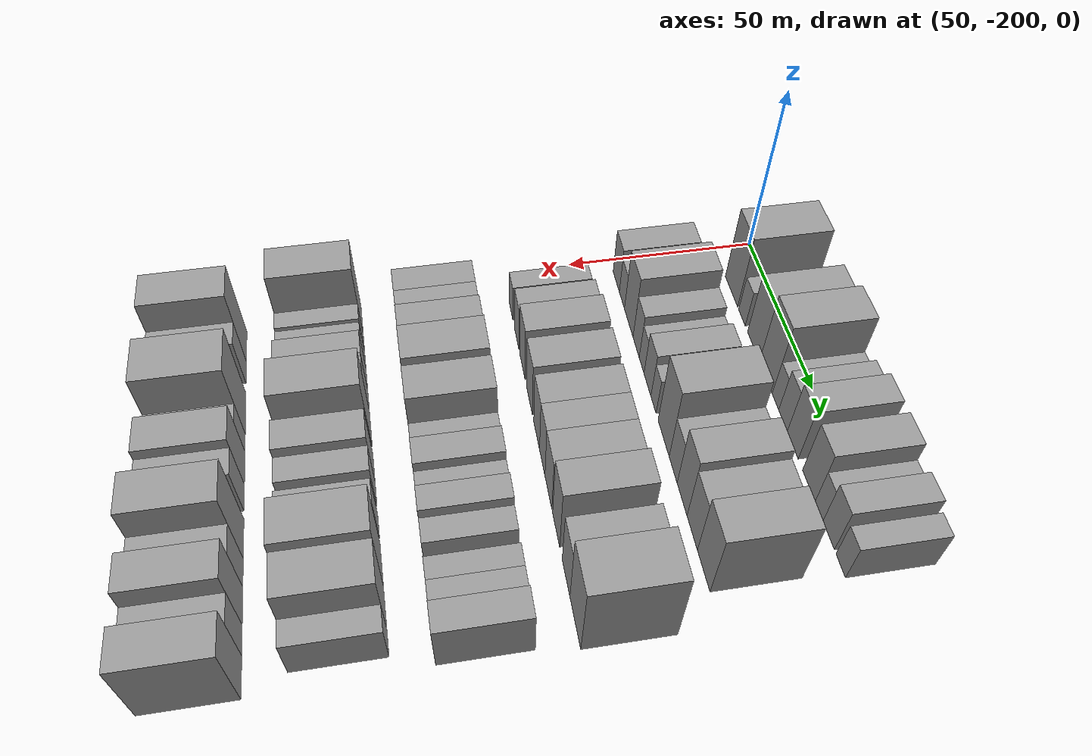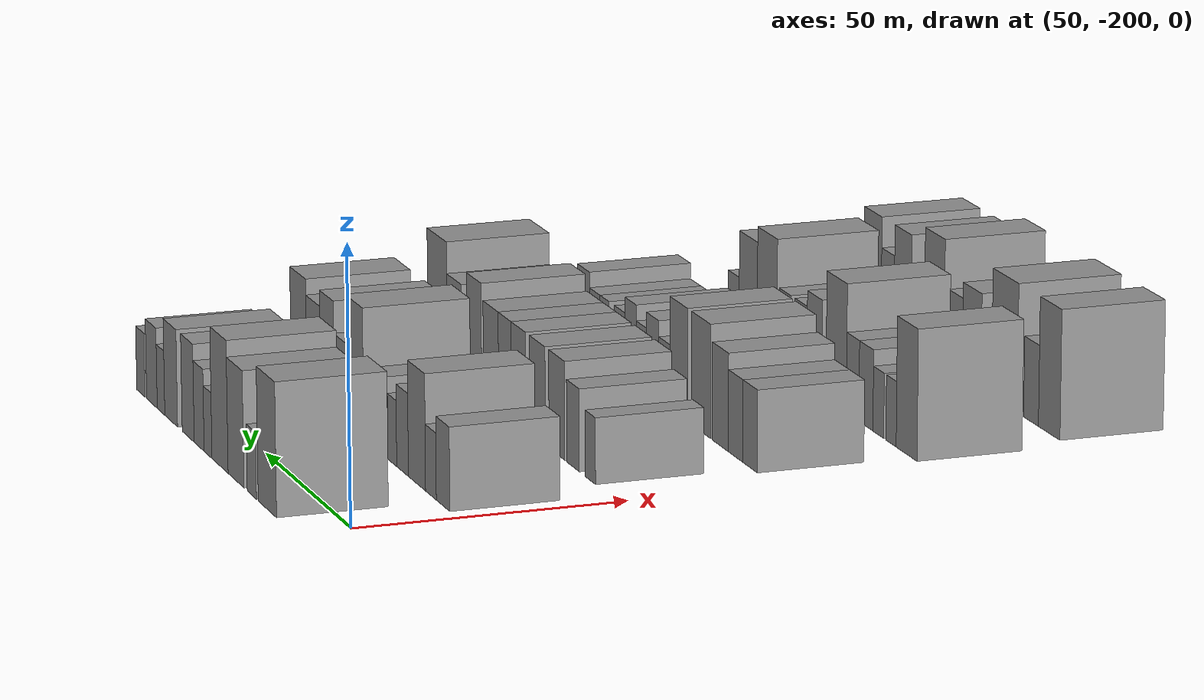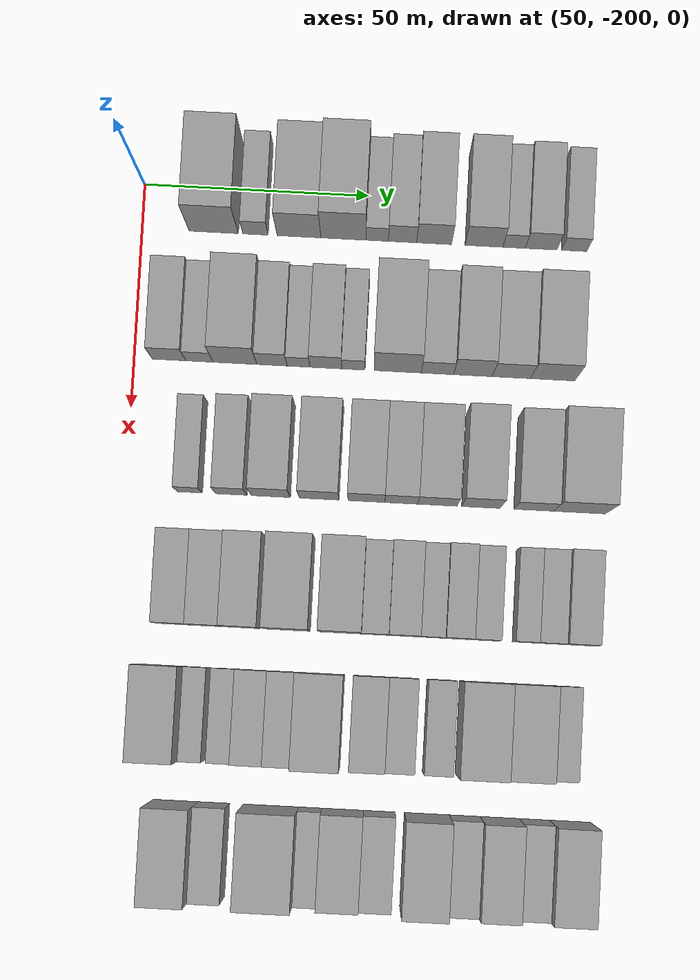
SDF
<sdf version="1.6">
 <world name="default">
  <model name="building_38">
   <static>1</static>
   <pose>50.0000 -184.0242 0 0.000000 0.000000 0.000000</pose>
   <link name="link">
    <pose>0 0 12.00 0 0 0</pose>
    <collision name="collision"><geometry><box><size>20.0000 10.9227 24.0000</size></box></geometry></collision>
    <visual name="visual">
     <cast_shadows>0</cast_shadows>
     <geometry><box><size>20.0000 10.9227 24.0000</size></box></geometry>
     <material>
      <script>
       <uri>model://grey_wall/materials/scripts</uri>
       <uri>model://grey_wall/materials/textures</uri>
       <name>vrc/grey_wall</name>
      </script>
     </material>
    </visual>
   </link>
  </model>
  <model name="building_39">
   <static>1</static>
   <pose>50.0000 -174.7651 0 0.000000 0.000000 0.000000</pose>
   <link name="link">
    <pose>0 0 6.00 0 0 0</pose>
    <collision name="collision"><geometry><box><size>20.0000 5.5954 12.0000</size></box></geometry></collision>
    <visual name="visual">
     <cast_shadows>0</cast_shadows>
     <geometry><box><size>20.0000 5.5954 12.0000</size></box></geometry>
     <material>
      <script>
       <uri>model://grey_wall/materials/scripts</uri>
       <uri>model://grey_wall/materials/textures</uri>
       <name>vrc/grey_wall</name>
      </script>
     </material>
    </visual>
   </link>
  </model>
  <model name="building_40">
   <static>1</static>
   <pose>50.0000 -165.1208 0 0.000000 0.000000 0.000000</pose>
   <link name="link">
    <pose>0 0 10.50 0 0 0</pose>
    <collision name="collision"><geometry><box><size>20.0000 9.6932 21.0000</size></box></geometry></collision>
    <visual name="visual">
     <cast_shadows>0</cast_shadows>
     <geometry><box><size>20.0000 9.6932 21.0000</size></box></geometry>
     <material>
      <script>
       <uri>model://grey_wall/materials/scripts</uri>
       <uri>model://grey_wall/materials/textures</uri>
       <name>vrc/grey_wall</name>
      </script>
     </material>
    </visual>
   </link>
  </model>
  <model name="building_41">
   <static>1</static>
   <pose>50.0000 -155.2484 0 0.000000 0.000000 0.000000</pose>
   <link name="link">
    <pose>0 0 12.00 0 0 0</pose>
    <collision name="collision"><geometry><box><size>20.0000 10.0516 24.0000</size></box></geometry></collision>
    <visual name="visual">
     <cast_shadows>0</cast_shadows>
     <geometry><box><size>20.0000 10.0516 24.0000</size></box></geometry>
     <material>
      <script>
       <uri>model://grey_wall/materials/scripts</uri>
       <uri>model://grey_wall/materials/textures</uri>
       <name>vrc/grey_wall</name>
      </script>
     </material>
    </visual>
   </link>
  </model>
  <model name="building_42">
   <static>1</static>
   <pose>50.0000 -147.7631 0 0.000000 0.000000 0.000000</pose>
   <link name="link">
    <pose>0 0 6.00 0 0 0</pose>
    <collision name="collision"><geometry><box><size>20.0000 4.9192 12.0000</size></box></geometry></collision>
    <visual name="visual">
     <cast_shadows>0</cast_shadows>
     <geometry><box><size>20.0000 4.9192 12.0000</size></box></geometry>
     <material>
      <script>
       <uri>model://grey_wall/materials/scripts</uri>
       <uri>model://grey_wall/materials/textures</uri>
       <name>vrc/grey_wall</name>
      </script>
     </material>
    </visual>
   </link>
  </model>
  <model name="building_43">
   <static>1</static>
   <pose>50.0000 -142.1714 0 0.000000 0.000000 0.000000</pose>
   <link name="link">
    <pose>0 0 7.50 0 0 0</pose>
    <collision name="collision"><geometry><box><size>20.0000 6.2641 15.0000</size></box></geometry></collision>
    <visual name="visual">
     <cast_shadows>0</cast_shadows>
     <geometry><box><size>20.0000 6.2641 15.0000</size></box></geometry>
     <material>
      <script>
       <uri>model://grey_wall/materials/scripts</uri>
       <uri>model://grey_wall/materials/textures</uri>
       <name>vrc/grey_wall</name>
      </script>
     </material>
    </visual>
   </link>
  </model>
  <model name="building_44">
   <static>1</static>
   <pose>50.0000 -135.1773 0 0.000000 0.000000 0.000000</pose>
   <link name="link">
    <pose>0 0 9.00 0 0 0</pose>
    <collision name="collision"><geometry><box><size>20.0000 7.7241 18.0000</size></box></geometry></collision>
    <visual name="visual">
     <cast_shadows>0</cast_shadows>
     <geometry><box><size>20.0000 7.7241 18.0000</size></box></geometry>
     <material>
      <script>
       <uri>model://grey_wall/materials/scripts</uri>
       <uri>model://grey_wall/materials/textures</uri>
       <name>vrc/grey_wall</name>
      </script>
     </material>
    </visual>
   </link>
  </model>
  <model name="building_45">
   <static>1</static>
   <pose>50.0000 -124.1490 0 0.000000 0.000000 0.000000</pose>
   <link name="link">
    <pose>0 0 9.00 0 0 0</pose>
    <collision name="collision"><geometry><box><size>20.0000 8.3326 18.0000</size></box></geometry></collision>
    <visual name="visual">
     <cast_shadows>0</cast_shadows>
     <geometry><box><size>20.0000 8.3326 18.0000</size></box></geometry>
     <material>
      <script>
       <uri>model://grey_wall/materials/scripts</uri>
       <uri>model://grey_wall/materials/textures</uri>
       <name>vrc/grey_wall</name>
      </script>
     </material>
    </visual>
   </link>
  </model>
  <model name="building_46">
   <static>1</static>
   <pose>50.0000 -117.4950 0 0.000000 0.000000 0.000000</pose>
   <link name="link">
    <pose>0 0 6.00 0 0 0</pose>
    <collision name="collision"><geometry><box><size>20.0000 4.9755 12.0000</size></box></geometry></collision>
    <visual name="visual">
     <cast_shadows>0</cast_shadows>
     <geometry><box><size>20.0000 4.9755 12.0000</size></box></geometry>
     <material>
      <script>
       <uri>model://grey_wall/materials/scripts</uri>
       <uri>model://grey_wall/materials/textures</uri>
       <name>vrc/grey_wall</name>
      </script>
     </material>
    </visual>
   </link>
  </model>
  <model name="building_47">
   <static>1</static>
   <pose>50.0000 -111.4804 0 0.000000 0.000000 0.000000</pose>
   <link name="link">
    <pose>0 0 7.50 0 0 0</pose>
    <collision name="collision"><geometry><box><size>20.0000 7.0537 15.0000</size></box></geometry></collision>
    <visual name="visual">
     <cast_shadows>0</cast_shadows>
     <geometry><box><size>20.0000 7.0537 15.0000</size></box></geometry>
     <material>
      <script>
       <uri>model://grey_wall/materials/scripts</uri>
       <uri>model://grey_wall/materials/textures</uri>
       <name>vrc/grey_wall</name>
      </script>
     </material>
    </visual>
   </link>
  </model>
  <model name="building_48">
   <static>1</static>
   <pose>50.0000 -104.1491 0 0.000000 0.000000 0.000000</pose>
   <link name="link">
    <pose>0 0 6.00 0 0 0</pose>
    <collision name="collision"><geometry><box><size>20.0000 5.6088 12.0000</size></box></geometry></collision>
    <visual name="visual">
     <cast_shadows>0</cast_shadows>
     <geometry><box><size>20.0000 5.6088 12.0000</size></box></geometry>
     <material>
      <script>
       <uri>model://grey_wall/materials/scripts</uri>
       <uri>model://grey_wall/materials/textures</uri>
       <name>vrc/grey_wall</name>
      </script>
     </material>
    </visual>
   </link>
  </model>
  <model name="building_153">
   <static>1</static>
   <pose>79.0000 -192.1638 0 0.000000 0.000000 0.000000</pose>
   <link name="link">
    <pose>0 0 7.50 0 0 0</pose>
    <collision name="collision"><geometry><box><size>20.0000 7.4065 15.0000</size></box></geometry></collision>
    <visual name="visual">
     <cast_shadows>0</cast_shadows>
     <geometry><box><size>20.0000 7.4065 15.0000</size></box></geometry>
     <material>
      <script>
       <uri>model://grey_wall/materials/scripts</uri>
       <uri>model://grey_wall/materials/textures</uri>
       <name>vrc/grey_wall</name>
      </script>
     </material>
    </visual>
   </link>
  </model>
  <model name="building_154">
   <static>1</static>
   <pose>79.0000 -185.4684 0 0.000000 0.000000 0.000000</pose>
   <link name="link">
    <pose>0 0 6.00 0 0 0</pose>
    <collision name="collision"><geometry><box><size>20.0000 5.9842 12.0000</size></box></geometry></collision>
    <visual name="visual">
     <cast_shadows>0</cast_shadows>
     <geometry><box><size>20.0000 5.9842 12.0000</size></box></geometry>
     <material>
      <script>
       <uri>model://grey_wall/materials/scripts</uri>
       <uri>model://grey_wall/materials/textures</uri>
       <name>vrc/grey_wall</name>
      </script>
     </material>
    </visual>
   </link>
  </model>
  <model name="building_155">
   <static>1</static>
   <pose>79.0000 -177.6312 0 0.000000 0.000000 0.000000</pose>
   <link name="link">
    <pose>0 0 10.50 0 0 0</pose>
    <collision name="collision"><geometry><box><size>20.0000 9.6901 21.0000</size></box></geometry></collision>
    <visual name="visual">
     <cast_shadows>0</cast_shadows>
     <geometry><box><size>20.0000 9.6901 21.0000</size></box></geometry>
     <material>
      <script>
       <uri>model://grey_wall/materials/scripts</uri>
       <uri>model://grey_wall/materials/textures</uri>
       <name>vrc/grey_wall</name>
      </script>
     </material>
    </visual>
   </link>
  </model>
  <model name="building_156">
   <static>1</static>
   <pose>79.0000 -169.4577 0 0.000000 0.000000 0.000000</pose>
   <link name="link">
    <pose>0 0 7.50 0 0 0</pose>
    <collision name="collision"><geometry><box><size>20.0000 6.6568 15.0000</size></box></geometry></collision>
    <visual name="visual">
     <cast_shadows>0</cast_shadows>
     <geometry><box><size>20.0000 6.6568 15.0000</size></box></geometry>
     <material>
      <script>
       <uri>model://grey_wall/materials/scripts</uri>
       <uri>model://grey_wall/materials/textures</uri>
       <name>vrc/grey_wall</name>
      </script>
     </material>
    </visual>
   </link>
  </model>
  <model name="building_157">
   <static>1</static>
   <pose>79.0000 -163.5980 0 0.000000 0.000000 0.000000</pose>
   <link name="link">
    <pose>0 0 6.00 0 0 0</pose>
    <collision name="collision"><geometry><box><size>20.0000 5.0628 12.0000</size></box></geometry></collision>
    <visual name="visual">
     <cast_shadows>0</cast_shadows>
     <geometry><box><size>20.0000 5.0628 12.0000</size></box></geometry>
     <material>
      <script>
       <uri>model://grey_wall/materials/scripts</uri>
       <uri>model://grey_wall/materials/textures</uri>
       <name>vrc/grey_wall</name>
      </script>
     </material>
    </visual>
   </link>
  </model>
  <model name="building_158">
   <static>1</static>
   <pose>79.0000 -157.5581 0 0.000000 0.000000 0.000000</pose>
   <link name="link">
    <pose>0 0 7.50 0 0 0</pose>
    <collision name="collision"><geometry><box><size>20.0000 7.0170 15.0000</size></box></geometry></collision>
    <visual name="visual">
     <cast_shadows>0</cast_shadows>
     <geometry><box><size>20.0000 7.0170 15.0000</size></box></geometry>
     <material>
      <script>
       <uri>model://grey_wall/materials/scripts</uri>
       <uri>model://grey_wall/materials/textures</uri>
       <name>vrc/grey_wall</name>
      </script>
     </material>
    </visual>
   </link>
  </model>
  <model name="building_159">
   <static>1</static>
   <pose>79.0000 -151.5121 0 0.000000 0.000000 0.000000</pose>
   <link name="link">
    <pose>0 0 6.00 0 0 0</pose>
    <collision name="collision"><geometry><box><size>20.0000 5.0750 12.0000</size></box></geometry></collision>
    <visual name="visual">
     <cast_shadows>0</cast_shadows>
     <geometry><box><size>20.0000 5.0750 12.0000</size></box></geometry>
     <material>
      <script>
       <uri>model://grey_wall/materials/scripts</uri>
       <uri>model://grey_wall/materials/textures</uri>
       <name>vrc/grey_wall</name>
      </script>
     </material>
    </visual>
   </link>
  </model>
  <model name="building_160">
   <static>1</static>
   <pose>79.0000 -141.7733 0 0.000000 0.000000 0.000000</pose>
   <link name="link">
    <pose>0 0 12.00 0 0 0</pose>
    <collision name="collision"><geometry><box><size>20.0000 10.4025 24.0000</size></box></geometry></collision>
    <visual name="visual">
     <cast_shadows>0</cast_shadows>
     <geometry><box><size>20.0000 10.4025 24.0000</size></box></geometry>
     <material>
      <script>
       <uri>model://grey_wall/materials/scripts</uri>
       <uri>model://grey_wall/materials/textures</uri>
       <name>vrc/grey_wall</name>
      </script>
     </material>
    </visual>
   </link>
  </model>
  <model name="building_161">
   <static>1</static>
   <pose>79.0000 -133.0103 0 0.000000 0.000000 0.000000</pose>
   <link name="link">
    <pose>0 0 7.50 0 0 0</pose>
    <collision name="collision"><geometry><box><size>20.0000 7.1236 15.0000</size></box></geometry></collision>
    <visual name="visual">
     <cast_shadows>0</cast_shadows>
     <geometry><box><size>20.0000 7.1236 15.0000</size></box></geometry>
     <material>
      <script>
       <uri>model://grey_wall/materials/scripts</uri>
       <uri>model://grey_wall/materials/textures</uri>
       <name>vrc/grey_wall</name>
      </script>
     </material>
    </visual>
   </link>
  </model>
  <model name="building_162">
   <static>1</static>
   <pose>79.0000 -125.2023 0 0.000000 0.000000 0.000000</pose>
   <link name="link">
    <pose>0 0 10.50 0 0 0</pose>
    <collision name="collision"><geometry><box><size>20.0000 8.4924 21.0000</size></box></geometry></collision>
    <visual name="visual">
     <cast_shadows>0</cast_shadows>
     <geometry><box><size>20.0000 8.4924 21.0000</size></box></geometry>
     <material>
      <script>
       <uri>model://grey_wall/materials/scripts</uri>
       <uri>model://grey_wall/materials/textures</uri>
       <name>vrc/grey_wall</name>
      </script>
     </material>
    </visual>
   </link>
  </model>
  <model name="building_163">
   <static>1</static>
   <pose>79.0000 -116.7203 0 0.000000 0.000000 0.000000</pose>
   <link name="link">
    <pose>0 0 9.00 0 0 0</pose>
    <collision name="collision"><geometry><box><size>20.0000 8.4717 18.0000</size></box></geometry></collision>
    <visual name="visual">
     <cast_shadows>0</cast_shadows>
     <geometry><box><size>20.0000 8.4717 18.0000</size></box></geometry>
     <material>
      <script>
       <uri>model://grey_wall/materials/scripts</uri>
       <uri>model://grey_wall/materials/textures</uri>
       <name>vrc/grey_wall</name>
      </script>
     </material>
    </visual>
   </link>
  </model>
  <model name="building_164">
   <static>1</static>
   <pose>79.0000 -107.5965 0 0.000000 0.000000 0.000000</pose>
   <link name="link">
    <pose>0 0 10.50 0 0 0</pose>
    <collision name="collision"><geometry><box><size>20.0000 9.7758 21.0000</size></box></geometry></collision>
    <visual name="visual">
     <cast_shadows>0</cast_shadows>
     <geometry><box><size>20.0000 9.7758 21.0000</size></box></geometry>
     <material>
      <script>
       <uri>model://grey_wall/materials/scripts</uri>
       <uri>model://grey_wall/materials/textures</uri>
       <name>vrc/grey_wall</name>
      </script>
     </material>
    </visual>
   </link>
  </model>
  <model name="building_267">
   <static>1</static>
   <pose>108.0000 -185.8639 0 0.000000 0.000000 0.000000</pose>
   <link name="link">
    <pose>0 0 6.00 0 0 0</pose>
    <collision name="collision"><geometry><box><size>20.0000 5.4788 12.0000</size></box></geometry></collision>
    <visual name="visual">
     <cast_shadows>0</cast_shadows>
     <geometry><box><size>20.0000 5.4788 12.0000</size></box></geometry>
     <material>
      <script>
       <uri>model://grey_wall/materials/scripts</uri>
       <uri>model://grey_wall/materials/textures</uri>
       <name>vrc/grey_wall</name>
      </script>
     </material>
    </visual>
   </link>
  </model>
  <model name="building_268">
   <static>1</static>
   <pose>108.0000 -176.7318 0 0.000000 0.000000 0.000000</pose>
   <link name="link">
    <pose>0 0 7.50 0 0 0</pose>
    <collision name="collision"><geometry><box><size>20.0000 6.7854 15.0000</size></box></geometry></collision>
    <visual name="visual">
     <cast_shadows>0</cast_shadows>
     <geometry><box><size>20.0000 6.7854 15.0000</size></box></geometry>
     <material>
      <script>
       <uri>model://grey_wall/materials/scripts</uri>
       <uri>model://grey_wall/materials/textures</uri>
       <name>vrc/grey_wall</name>
      </script>
     </material>
    </visual>
   </link>
  </model>
  <model name="building_269">
   <static>1</static>
   <pose>108.0000 -168.0785 0 0.000000 0.000000 0.000000</pose>
   <link name="link">
    <pose>0 0 9.00 0 0 0</pose>
    <collision name="collision"><geometry><box><size>20.0000 8.5213 18.0000</size></box></geometry></collision>
    <visual name="visual">
     <cast_shadows>0</cast_shadows>
     <geometry><box><size>20.0000 8.5213 18.0000</size></box></geometry>
     <material>
      <script>
       <uri>model://grey_wall/materials/scripts</uri>
       <uri>model://grey_wall/materials/textures</uri>
       <name>vrc/grey_wall</name>
      </script>
     </material>
    </visual>
   </link>
  </model>
  <model name="building_270">
   <static>1</static>
   <pose>108.0000 -157.4808 0 0.000000 0.000000 0.000000</pose>
   <link name="link">
    <pose>0 0 9.00 0 0 0</pose>
    <collision name="collision"><geometry><box><size>20.0000 8.6741 18.0000</size></box></geometry></collision>
    <visual name="visual">
     <cast_shadows>0</cast_shadows>
     <geometry><box><size>20.0000 8.6741 18.0000</size></box></geometry>
     <material>
      <script>
       <uri>model://grey_wall/materials/scripts</uri>
       <uri>model://grey_wall/materials/textures</uri>
       <name>vrc/grey_wall</name>
      </script>
     </material>
    </visual>
   </link>
  </model>
  <model name="building_271">
   <static>1</static>
   <pose>108.0000 -147.1413 0 0.000000 0.000000 0.000000</pose>
   <link name="link">
    <pose>0 0 9.00 0 0 0</pose>
    <collision name="collision"><geometry><box><size>20.0000 8.0049 18.0000</size></box></geometry></collision>
    <visual name="visual">
     <cast_shadows>0</cast_shadows>
     <geometry><box><size>20.0000 8.0049 18.0000</size></box></geometry>
     <material>
      <script>
       <uri>model://grey_wall/materials/scripts</uri>
       <uri>model://grey_wall/materials/textures</uri>
       <name>vrc/grey_wall</name>
      </script>
     </material>
    </visual>
   </link>
  </model>
  <model name="building_272">
   <static>1</static>
   <pose>108.0000 -139.5292 0 0.000000 0.000000 0.000000</pose>
   <link name="link">
    <pose>0 0 9.00 0 0 0</pose>
    <collision name="collision"><geometry><box><size>20.0000 7.2195 18.0000</size></box></geometry></collision>
    <visual name="visual">
     <cast_shadows>0</cast_shadows>
     <geometry><box><size>20.0000 7.2195 18.0000</size></box></geometry>
     <material>
      <script>
       <uri>model://grey_wall/materials/scripts</uri>
       <uri>model://grey_wall/materials/textures</uri>
       <name>vrc/grey_wall</name>
      </script>
     </material>
    </visual>
   </link>
  </model>
  <model name="building_273">
   <static>1</static>
   <pose>108.0000 -131.5983 0 0.000000 0.000000 0.000000</pose>
   <link name="link">
    <pose>0 0 9.00 0 0 0</pose>
    <collision name="collision"><geometry><box><size>20.0000 8.6423 18.0000</size></box></geometry></collision>
    <visual name="visual">
     <cast_shadows>0</cast_shadows>
     <geometry><box><size>20.0000 8.6423 18.0000</size></box></geometry>
     <material>
      <script>
       <uri>model://grey_wall/materials/scripts</uri>
       <uri>model://grey_wall/materials/textures</uri>
       <name>vrc/grey_wall</name>
      </script>
     </material>
    </visual>
   </link>
  </model>
  <model name="building_274">
   <static>1</static>
   <pose>108.0000 -122.0644 0 0.000000 0.000000 0.000000</pose>
   <link name="link">
    <pose>0 0 10.50 0 0 0</pose>
    <collision name="collision"><geometry><box><size>20.0000 8.4255 21.0000</size></box></geometry></collision>
    <visual name="visual">
     <cast_shadows>0</cast_shadows>
     <geometry><box><size>20.0000 8.4255 21.0000</size></box></geometry>
     <material>
      <script>
       <uri>model://grey_wall/materials/scripts</uri>
       <uri>model://grey_wall/materials/textures</uri>
       <name>vrc/grey_wall</name>
      </script>
     </material>
    </visual>
   </link>
  </model>
  <model name="building_275">
   <static>1</static>
   <pose>108.0000 -110.5147 0 0.000000 0.000000 0.000000</pose>
   <link name="link">
    <pose>0 0 9.00 0 0 0</pose>
    <collision name="collision"><geometry><box><size>20.0000 8.6739 18.0000</size></box></geometry></collision>
    <visual name="visual">
     <cast_shadows>0</cast_shadows>
     <geometry><box><size>20.0000 8.6739 18.0000</size></box></geometry>
     <material>
      <script>
       <uri>model://grey_wall/materials/scripts</uri>
       <uri>model://grey_wall/materials/textures</uri>
       <name>vrc/grey_wall</name>
      </script>
     </material>
    </visual>
   </link>
  </model>
  <model name="building_276">
   <static>1</static>
   <pose>108.0000 -100.4552 0 0.000000 0.000000 0.000000</pose>
   <link name="link">
    <pose>0 0 12.00 0 0 0</pose>
    <collision name="collision"><geometry><box><size>20.0000 11.4451 24.0000</size></box></geometry></collision>
    <visual name="visual">
     <cast_shadows>0</cast_shadows>
     <geometry><box><size>20.0000 11.4451 24.0000</size></box></geometry>
     <material>
      <script>
       <uri>model://grey_wall/materials/scripts</uri>
       <uri>model://grey_wall/materials/textures</uri>
       <name>vrc/grey_wall</name>
      </script>
     </material>
    </visual>
   </link>
  </model>
  <model name="building_381">
   <static>1</static>
   <pose>137.0000 -187.6992 0 0.000000 0.000000 0.000000</pose>
   <link name="link">
    <pose>0 0 7.50 0 0 0</pose>
    <collision name="collision"><geometry><box><size>20.0000 7.1843 15.0000</size></box></geometry></collision>
    <visual name="visual">
     <cast_shadows>0</cast_shadows>
     <geometry><box><size>20.0000 7.1843 15.0000</size></box></geometry>
     <material>
      <script>
       <uri>model://grey_wall/materials/scripts</uri>
       <uri>model://grey_wall/materials/textures</uri>
       <name>vrc/grey_wall</name>
      </script>
     </material>
    </visual>
   </link>
  </model>
  <model name="building_382">
   <static>1</static>
   <pose>137.0000 -180.4706 0 0.000000 0.000000 0.000000</pose>
   <link name="link">
    <pose>0 0 7.50 0 0 0</pose>
    <collision name="collision"><geometry><box><size>20.0000 7.2728 15.0000</size></box></geometry></collision>
    <visual name="visual">
     <cast_shadows>0</cast_shadows>
     <geometry><box><size>20.0000 7.2728 15.0000</size></box></geometry>
     <material>
      <script>
       <uri>model://grey_wall/materials/scripts</uri>
       <uri>model://grey_wall/materials/textures</uri>
       <name>vrc/grey_wall</name>
      </script>
     </material>
    </visual>
   </link>
  </model>
  <model name="building_383">
   <static>1</static>
   <pose>137.0000 -172.7658 0 0.000000 0.000000 0.000000</pose>
   <link name="link">
    <pose>0 0 9.00 0 0 0</pose>
    <collision name="collision"><geometry><box><size>20.0000 8.1368 18.0000</size></box></geometry></collision>
    <visual name="visual">
     <cast_shadows>0</cast_shadows>
     <geometry><box><size>20.0000 8.1368 18.0000</size></box></geometry>
     <material>
      <script>
       <uri>model://grey_wall/materials/scripts</uri>
       <uri>model://grey_wall/materials/textures</uri>
       <name>vrc/grey_wall</name>
      </script>
     </material>
    </visual>
   </link>
  </model>
  <model name="building_384">
   <static>1</static>
   <pose>137.0000 -162.7861 0 0.000000 0.000000 0.000000</pose>
   <link name="link">
    <pose>0 0 10.50 0 0 0</pose>
    <collision name="collision"><geometry><box><size>20.0000 9.8226 21.0000</size></box></geometry></collision>
    <visual name="visual">
     <cast_shadows>0</cast_shadows>
     <geometry><box><size>20.0000 9.8226 21.0000</size></box></geometry>
     <material>
      <script>
       <uri>model://grey_wall/materials/scripts</uri>
       <uri>model://grey_wall/materials/textures</uri>
       <name>vrc/grey_wall</name>
      </script>
     </material>
    </visual>
   </link>
  </model>
  <model name="building_385">
   <static>1</static>
   <pose>137.0000 -151.2674 0 0.000000 0.000000 0.000000</pose>
   <link name="link">
    <pose>0 0 10.50 0 0 0</pose>
    <collision name="collision"><geometry><box><size>20.0000 9.2147 21.0000</size></box></geometry></collision>
    <visual name="visual">
     <cast_shadows>0</cast_shadows>
     <geometry><box><size>20.0000 9.2147 21.0000</size></box></geometry>
     <material>
      <script>
       <uri>model://grey_wall/materials/scripts</uri>
       <uri>model://grey_wall/materials/textures</uri>
       <name>vrc/grey_wall</name>
      </script>
     </material>
    </visual>
   </link>
  </model>
  <model name="building_386">
   <static>1</static>
   <pose>137.0000 -143.7419 0 0.000000 0.000000 0.000000</pose>
   <link name="link">
    <pose>0 0 6.00 0 0 0</pose>
    <collision name="collision"><geometry><box><size>20.0000 5.8364 12.0000</size></box></geometry></collision>
    <visual name="visual">
     <cast_shadows>0</cast_shadows>
     <geometry><box><size>20.0000 5.8364 12.0000</size></box></geometry>
     <material>
      <script>
       <uri>model://grey_wall/materials/scripts</uri>
       <uri>model://grey_wall/materials/textures</uri>
       <name>vrc/grey_wall</name>
      </script>
     </material>
    </visual>
   </link>
  </model>
  <model name="building_387">
   <static>1</static>
   <pose>137.0000 -137.4487 0 0.000000 0.000000 0.000000</pose>
   <link name="link">
    <pose>0 0 7.50 0 0 0</pose>
    <collision name="collision"><geometry><box><size>20.0000 6.7500 15.0000</size></box></geometry></collision>
    <visual name="visual">
     <cast_shadows>0</cast_shadows>
     <geometry><box><size>20.0000 6.7500 15.0000</size></box></geometry>
     <material>
      <script>
       <uri>model://grey_wall/materials/scripts</uri>
       <uri>model://grey_wall/materials/textures</uri>
       <name>vrc/grey_wall</name>
      </script>
     </material>
    </visual>
   </link>
  </model>
  <model name="building_388">
   <static>1</static>
   <pose>137.0000 -131.4092 0 0.000000 0.000000 0.000000</pose>
   <link name="link">
    <pose>0 0 6.00 0 0 0</pose>
    <collision name="collision"><geometry><box><size>20.0000 5.3291 12.0000</size></box></geometry></collision>
    <visual name="visual">
     <cast_shadows>0</cast_shadows>
     <geometry><box><size>20.0000 5.3291 12.0000</size></box></geometry>
     <material>
      <script>
       <uri>model://grey_wall/materials/scripts</uri>
       <uri>model://grey_wall/materials/textures</uri>
       <name>vrc/grey_wall</name>
      </script>
     </material>
    </visual>
   </link>
  </model>
  <model name="building_389">
   <static>1</static>
   <pose>137.0000 -125.7142 0 0.000000 0.000000 0.000000</pose>
   <link name="link">
    <pose>0 0 7.50 0 0 0</pose>
    <collision name="collision"><geometry><box><size>20.0000 6.0608 15.0000</size></box></geometry></collision>
    <visual name="visual">
     <cast_shadows>0</cast_shadows>
     <geometry><box><size>20.0000 6.0608 15.0000</size></box></geometry>
     <material>
      <script>
       <uri>model://grey_wall/materials/scripts</uri>
       <uri>model://grey_wall/materials/textures</uri>
       <name>vrc/grey_wall</name>
      </script>
     </material>
    </visual>
   </link>
  </model>
  <model name="building_390">
   <static>1</static>
   <pose>137.0000 -119.7644 0 0.000000 0.000000 0.000000</pose>
   <link name="link">
    <pose>0 0 6.00 0 0 0</pose>
    <collision name="collision"><geometry><box><size>20.0000 5.8388 12.0000</size></box></geometry></collision>
    <visual name="visual">
     <cast_shadows>0</cast_shadows>
     <geometry><box><size>20.0000 5.8388 12.0000</size></box></geometry>
     <material>
      <script>
       <uri>model://grey_wall/materials/scripts</uri>
       <uri>model://grey_wall/materials/textures</uri>
       <name>vrc/grey_wall</name>
      </script>
     </material>
    </visual>
   </link>
  </model>
  <model name="building_391">
   <static>1</static>
   <pose>137.0000 -111.2874 0 0.000000 0.000000 0.000000</pose>
   <link name="link">
    <pose>0 0 6.00 0 0 0</pose>
    <collision name="collision"><geometry><box><size>20.0000 5.1153 12.0000</size></box></geometry></collision>
    <visual name="visual">
     <cast_shadows>0</cast_shadows>
     <geometry><box><size>20.0000 5.1153 12.0000</size></box></geometry>
     <material>
      <script>
       <uri>model://grey_wall/materials/scripts</uri>
       <uri>model://grey_wall/materials/textures</uri>
       <name>vrc/grey_wall</name>
      </script>
     </material>
    </visual>
   </link>
  </model>
  <model name="building_392">
   <static>1</static>
   <pose>137.0000 -105.8139 0 0.000000 0.000000 0.000000</pose>
   <link name="link">
    <pose>0 0 6.00 0 0 0</pose>
    <collision name="collision"><geometry><box><size>20.0000 5.8317 12.0000</size></box></geometry></collision>
    <visual name="visual">
     <cast_shadows>0</cast_shadows>
     <geometry><box><size>20.0000 5.8317 12.0000</size></box></geometry>
     <material>
      <script>
       <uri>model://grey_wall/materials/scripts</uri>
       <uri>model://grey_wall/materials/textures</uri>
       <name>vrc/grey_wall</name>
      </script>
     </material>
    </visual>
   </link>
  </model>
  <model name="building_393">
   <static>1</static>
   <pose>137.0000 -99.4888 0 0.000000 0.000000 0.000000</pose>
   <link name="link">
    <pose>0 0 7.50 0 0 0</pose>
    <collision name="collision"><geometry><box><size>20.0000 6.8184 15.0000</size></box></geometry></collision>
    <visual name="visual">
     <cast_shadows>0</cast_shadows>
     <geometry><box><size>20.0000 6.8184 15.0000</size></box></geometry>
     <material>
      <script>
       <uri>model://grey_wall/materials/scripts</uri>
       <uri>model://grey_wall/materials/textures</uri>
       <name>vrc/grey_wall</name>
      </script>
     </material>
    </visual>
   </link>
  </model>
  <model name="building_505">
   <static>1</static>
   <pose>166.0000 -188.9679 0 0.000000 0.000000 0.000000</pose>
   <link name="link">
    <pose>0 0 12.00 0 0 0</pose>
    <collision name="collision"><geometry><box><size>20.0000 9.8415 24.0000</size></box></geometry></collision>
    <visual name="visual">
     <cast_shadows>0</cast_shadows>
     <geometry><box><size>20.0000 9.8415 24.0000</size></box></geometry>
     <material>
      <script>
       <uri>model://grey_wall/materials/scripts</uri>
       <uri>model://grey_wall/materials/textures</uri>
       <name>vrc/grey_wall</name>
      </script>
     </material>
    </visual>
   </link>
  </model>
  <model name="building_506">
   <static>1</static>
   <pose>166.0000 -181.5853 0 0.000000 0.000000 0.000000</pose>
   <link name="link">
    <pose>0 0 6.00 0 0 0</pose>
    <collision name="collision"><geometry><box><size>20.0000 4.9237 12.0000</size></box></geometry></collision>
    <visual name="visual">
     <cast_shadows>0</cast_shadows>
     <geometry><box><size>20.0000 4.9237 12.0000</size></box></geometry>
     <material>
      <script>
       <uri>model://grey_wall/materials/scripts</uri>
       <uri>model://grey_wall/materials/textures</uri>
       <name>vrc/grey_wall</name>
      </script>
     </material>
    </visual>
   </link>
  </model>
  <model name="building_507">
   <static>1</static>
   <pose>166.0000 -175.5259 0 0.000000 0.000000 0.000000</pose>
   <link name="link">
    <pose>0 0 6.00 0 0 0</pose>
    <collision name="collision"><geometry><box><size>20.0000 5.1951 12.0000</size></box></geometry></collision>
    <visual name="visual">
     <cast_shadows>0</cast_shadows>
     <geometry><box><size>20.0000 5.1951 12.0000</size></box></geometry>
     <material>
      <script>
       <uri>model://grey_wall/materials/scripts</uri>
       <uri>model://grey_wall/materials/textures</uri>
       <name>vrc/grey_wall</name>
      </script>
     </material>
    </visual>
   </link>
  </model>
  <model name="building_508">
   <static>1</static>
   <pose>166.0000 -169.5292 0 0.000000 0.000000 0.000000</pose>
   <link name="link">
    <pose>0 0 7.50 0 0 0</pose>
    <collision name="collision"><geometry><box><size>20.0000 6.7982 15.0000</size></box></geometry></collision>
    <visual name="visual">
     <cast_shadows>0</cast_shadows>
     <geometry><box><size>20.0000 6.7982 15.0000</size></box></geometry>
     <material>
      <script>
       <uri>model://grey_wall/materials/scripts</uri>
       <uri>model://grey_wall/materials/textures</uri>
       <name>vrc/grey_wall</name>
      </script>
     </material>
    </visual>
   </link>
  </model>
  <model name="building_509">
   <static>1</static>
   <pose>166.0000 -163.0669 0 0.000000 0.000000 0.000000</pose>
   <link name="link">
    <pose>0 0 7.50 0 0 0</pose>
    <collision name="collision"><geometry><box><size>20.0000 6.1266 15.0000</size></box></geometry></collision>
    <visual name="visual">
     <cast_shadows>0</cast_shadows>
     <geometry><box><size>20.0000 6.1266 15.0000</size></box></geometry>
     <material>
      <script>
       <uri>model://grey_wall/materials/scripts</uri>
       <uri>model://grey_wall/materials/textures</uri>
       <name>vrc/grey_wall</name>
      </script>
     </material>
    </visual>
   </link>
  </model>
  <model name="building_510">
   <static>1</static>
   <pose>166.0000 -154.9413 0 0.000000 0.000000 0.000000</pose>
   <link name="link">
    <pose>0 0 12.00 0 0 0</pose>
    <collision name="collision"><geometry><box><size>20.0000 10.1246 24.0000</size></box></geometry></collision>
    <visual name="visual">
     <cast_shadows>0</cast_shadows>
     <geometry><box><size>20.0000 10.1246 24.0000</size></box></geometry>
     <material>
      <script>
       <uri>model://grey_wall/materials/scripts</uri>
       <uri>model://grey_wall/materials/textures</uri>
       <name>vrc/grey_wall</name>
      </script>
     </material>
    </visual>
   </link>
  </model>
  <model name="building_511">
   <static>1</static>
   <pose>166.0000 -144.0713 0 0.000000 0.000000 0.000000</pose>
   <link name="link">
    <pose>0 0 9.00 0 0 0</pose>
    <collision name="collision"><geometry><box><size>20.0000 7.6154 18.0000</size></box></geometry></collision>
    <visual name="visual">
     <cast_shadows>0</cast_shadows>
     <geometry><box><size>20.0000 7.6154 18.0000</size></box></geometry>
     <material>
      <script>
       <uri>model://grey_wall/materials/scripts</uri>
       <uri>model://grey_wall/materials/textures</uri>
       <name>vrc/grey_wall</name>
      </script>
     </material>
    </visual>
   </link>
  </model>
  <model name="building_512">
   <static>1</static>
   <pose>166.0000 -137.1298 0 0.000000 0.000000 0.000000</pose>
   <link name="link">
    <pose>0 0 7.50 0 0 0</pose>
    <collision name="collision"><geometry><box><size>20.0000 6.2675 15.0000</size></box></geometry></collision>
    <visual name="visual">
     <cast_shadows>0</cast_shadows>
     <geometry><box><size>20.0000 6.2675 15.0000</size></box></geometry>
     <material>
      <script>
       <uri>model://grey_wall/materials/scripts</uri>
       <uri>model://grey_wall/materials/textures</uri>
       <name>vrc/grey_wall</name>
      </script>
     </material>
    </visual>
   </link>
  </model>
  <model name="building_513">
   <static>1</static>
   <pose>166.0000 -128.9536 0 0.000000 0.000000 0.000000</pose>
   <link name="link">
    <pose>0 0 7.50 0 0 0</pose>
    <collision name="collision"><geometry><box><size>20.0000 6.0850 15.0000</size></box></geometry></collision>
    <visual name="visual">
     <cast_shadows>0</cast_shadows>
     <geometry><box><size>20.0000 6.0850 15.0000</size></box></geometry>
     <material>
      <script>
       <uri>model://grey_wall/materials/scripts</uri>
       <uri>model://grey_wall/materials/textures</uri>
       <name>vrc/grey_wall</name>
      </script>
     </material>
    </visual>
   </link>
  </model>
  <model name="building_514">
   <static>1</static>
   <pose>166.0000 -119.7520 0 0.000000 0.000000 0.000000</pose>
   <link name="link">
    <pose>0 0 12.00 0 0 0</pose>
    <collision name="collision"><geometry><box><size>20.0000 10.3180 24.0000</size></box></geometry></collision>
    <visual name="visual">
     <cast_shadows>0</cast_shadows>
     <geometry><box><size>20.0000 10.3180 24.0000</size></box></geometry>
     <material>
      <script>
       <uri>model://grey_wall/materials/scripts</uri>
       <uri>model://grey_wall/materials/textures</uri>
       <name>vrc/grey_wall</name>
      </script>
     </material>
    </visual>
   </link>
  </model>
  <model name="building_515">
   <static>1</static>
   <pose>166.0000 -109.7786 0 0.000000 0.000000 0.000000</pose>
   <link name="link">
    <pose>0 0 10.50 0 0 0</pose>
    <collision name="collision"><geometry><box><size>20.0000 9.6288 21.0000</size></box></geometry></collision>
    <visual name="visual">
     <cast_shadows>0</cast_shadows>
     <geometry><box><size>20.0000 9.6288 21.0000</size></box></geometry>
     <material>
      <script>
       <uri>model://grey_wall/materials/scripts</uri>
       <uri>model://grey_wall/materials/textures</uri>
       <name>vrc/grey_wall</name>
      </script>
     </material>
    </visual>
   </link>
  </model>
  <model name="building_516">
   <static>1</static>
   <pose>166.0000 -102.0785 0 0.000000 0.000000 0.000000</pose>
   <link name="link">
    <pose>0 0 6.00 0 0 0</pose>
    <collision name="collision"><geometry><box><size>20.0000 5.7716 12.0000</size></box></geometry></collision>
    <visual name="visual">
     <cast_shadows>0</cast_shadows>
     <geometry><box><size>20.0000 5.7716 12.0000</size></box></geometry>
     <material>
      <script>
       <uri>model://grey_wall/materials/scripts</uri>
       <uri>model://grey_wall/materials/textures</uri>
       <name>vrc/grey_wall</name>
      </script>
     </material>
    </visual>
   </link>
  </model>
  <model name="building_620">
   <static>1</static>
   <pose>195.0000 -184.9259 0 0.000000 0.000000 0.000000</pose>
   <link name="link">
    <pose>0 0 12.00 0 0 0</pose>
    <collision name="collision"><geometry><box><size>20.0000 9.7514 24.0000</size></box></geometry></collision>
    <visual name="visual">
     <cast_shadows>0</cast_shadows>
     <geometry><box><size>20.0000 9.7514 24.0000</size></box></geometry>
     <material>
      <script>
       <uri>model://grey_wall/materials/scripts</uri>
       <uri>model://grey_wall/materials/textures</uri>
       <name>vrc/grey_wall</name>
      </script>
     </material>
    </visual>
   </link>
  </model>
  <model name="building_621">
   <static>1</static>
   <pose>195.0000 -176.6489 0 0.000000 0.000000 0.000000</pose>
   <link name="link">
    <pose>0 0 7.50 0 0 0</pose>
    <collision name="collision"><geometry><box><size>20.0000 6.8025 15.0000</size></box></geometry></collision>
    <visual name="visual">
     <cast_shadows>0</cast_shadows>
     <geometry><box><size>20.0000 6.8025 15.0000</size></box></geometry>
     <material>
      <script>
       <uri>model://grey_wall/materials/scripts</uri>
       <uri>model://grey_wall/materials/textures</uri>
       <name>vrc/grey_wall</name>
      </script>
     </material>
    </visual>
   </link>
  </model>
  <model name="building_622">
   <static>1</static>
   <pose>195.0000 -164.2511 0 0.000000 0.000000 0.000000</pose>
   <link name="link">
    <pose>0 0 12.00 0 0 0</pose>
    <collision name="collision"><geometry><box><size>20.0000 11.9931 24.0000</size></box></geometry></collision>
    <visual name="visual">
     <cast_shadows>0</cast_shadows>
     <geometry><box><size>20.0000 11.9931 24.0000</size></box></geometry>
     <material>
      <script>
       <uri>model://grey_wall/materials/scripts</uri>
       <uri>model://grey_wall/materials/textures</uri>
       <name>vrc/grey_wall</name>
      </script>
     </material>
    </visual>
   </link>
  </model>
  <model name="building_623">
   <static>1</static>
   <pose>195.0000 -155.7522 0 0.000000 0.000000 0.000000</pose>
   <link name="link">
    <pose>0 0 6.00 0 0 0</pose>
    <collision name="collision"><geometry><box><size>20.0000 5.0048 12.0000</size></box></geometry></collision>
    <visual name="visual">
     <cast_shadows>0</cast_shadows>
     <geometry><box><size>20.0000 5.0048 12.0000</size></box></geometry>
     <material>
      <script>
       <uri>model://grey_wall/materials/scripts</uri>
       <uri>model://grey_wall/materials/textures</uri>
       <name>vrc/grey_wall</name>
      </script>
     </material>
    </visual>
   </link>
  </model>
  <model name="building_624">
   <static>1</static>
   <pose>195.0000 -148.7823 0 0.000000 0.000000 0.000000</pose>
   <link name="link">
    <pose>0 0 9.00 0 0 0</pose>
    <collision name="collision"><geometry><box><size>20.0000 8.9349 18.0000</size></box></geometry></collision>
    <visual name="visual">
     <cast_shadows>0</cast_shadows>
     <geometry><box><size>20.0000 8.9349 18.0000</size></box></geometry>
     <material>
      <script>
       <uri>model://grey_wall/materials/scripts</uri>
       <uri>model://grey_wall/materials/textures</uri>
       <name>vrc/grey_wall</name>
      </script>
     </material>
    </visual>
   </link>
  </model>
  <model name="building_625">
   <static>1</static>
   <pose>195.0000 -140.8824 0 0.000000 0.000000 0.000000</pose>
   <link name="link">
    <pose>0 0 7.50 0 0 0</pose>
    <collision name="collision"><geometry><box><size>20.0000 6.8648 15.0000</size></box></geometry></collision>
    <visual name="visual">
     <cast_shadows>0</cast_shadows>
     <geometry><box><size>20.0000 6.8648 15.0000</size></box></geometry>
     <material>
      <script>
       <uri>model://grey_wall/materials/scripts</uri>
       <uri>model://grey_wall/materials/textures</uri>
       <name>vrc/grey_wall</name>
      </script>
     </material>
    </visual>
   </link>
  </model>
  <model name="building_626">
   <static>1</static>
   <pose>195.0000 -130.5905 0 0.000000 0.000000 0.000000</pose>
   <link name="link">
    <pose>0 0 12.00 0 0 0</pose>
    <collision name="collision"><geometry><box><size>20.0000 9.7190 24.0000</size></box></geometry></collision>
    <visual name="visual">
     <cast_shadows>0</cast_shadows>
     <geometry><box><size>20.0000 9.7190 24.0000</size></box></geometry>
     <material>
      <script>
       <uri>model://grey_wall/materials/scripts</uri>
       <uri>model://grey_wall/materials/textures</uri>
       <name>vrc/grey_wall</name>
      </script>
     </material>
    </visual>
   </link>
  </model>
  <model name="building_627">
   <static>1</static>
   <pose>195.0000 -122.4020 0 0.000000 0.000000 0.000000</pose>
   <link name="link">
    <pose>0 0 7.50 0 0 0</pose>
    <collision name="collision"><geometry><box><size>20.0000 6.6579 15.0000</size></box></geometry></collision>
    <visual name="visual">
     <cast_shadows>0</cast_shadows>
     <geometry><box><size>20.0000 6.6579 15.0000</size></box></geometry>
     <material>
      <script>
       <uri>model://grey_wall/materials/scripts</uri>
       <uri>model://grey_wall/materials/textures</uri>
       <name>vrc/grey_wall</name>
      </script>
     </material>
    </visual>
   </link>
  </model>
  <model name="building_628">
   <static>1</static>
   <pose>195.0000 -114.8606 0 0.000000 0.000000 0.000000</pose>
   <link name="link">
    <pose>0 0 10.50 0 0 0</pose>
    <collision name="collision"><geometry><box><size>20.0000 8.4250 21.0000</size></box></geometry></collision>
    <visual name="visual">
     <cast_shadows>0</cast_shadows>
     <geometry><box><size>20.0000 8.4250 21.0000</size></box></geometry>
     <material>
      <script>
       <uri>model://grey_wall/materials/scripts</uri>
       <uri>model://grey_wall/materials/textures</uri>
       <name>vrc/grey_wall</name>
      </script>
     </material>
    </visual>
   </link>
  </model>
  <model name="building_629">
   <static>1</static>
   <pose>195.0000 -107.3681 0 0.000000 0.000000 0.000000</pose>
   <link name="link">
    <pose>0 0 7.50 0 0 0</pose>
    <collision name="collision"><geometry><box><size>20.0000 6.5601 15.0000</size></box></geometry></collision>
    <visual name="visual">
     <cast_shadows>0</cast_shadows>
     <geometry><box><size>20.0000 6.5601 15.0000</size></box></geometry>
     <material>
      <script>
       <uri>model://grey_wall/materials/scripts</uri>
       <uri>model://grey_wall/materials/textures</uri>
       <name>vrc/grey_wall</name>
      </script>
     </material>
    </visual>
   </link>
  </model>
  <model name="building_630">
   <static>1</static>
   <pose>195.0000 -99.6374 0 0.000000 0.000000 0.000000</pose>
   <link name="link">
    <pose>0 0 10.50 0 0 0</pose>
    <collision name="collision"><geometry><box><size>20.0000 8.9012 21.0000</size></box></geometry></collision>
    <visual name="visual">
     <cast_shadows>0</cast_shadows>
     <geometry><box><size>20.0000 8.9012 21.0000</size></box></geometry>
     <material>
      <script>
       <uri>model://grey_wall/materials/scripts</uri>
       <uri>model://grey_wall/materials/textures</uri>
       <name>vrc/grey_wall</name>
      </script>
     </material>
    </visual>
   </link>
  </model>
 </world>
</sdf>
